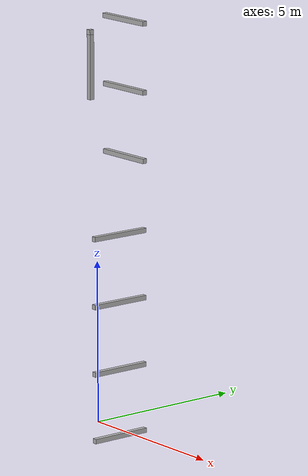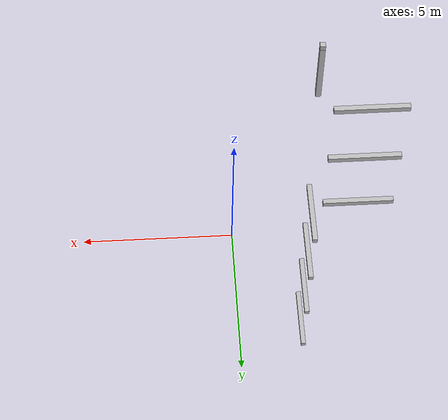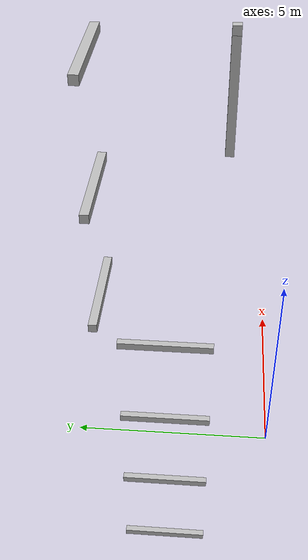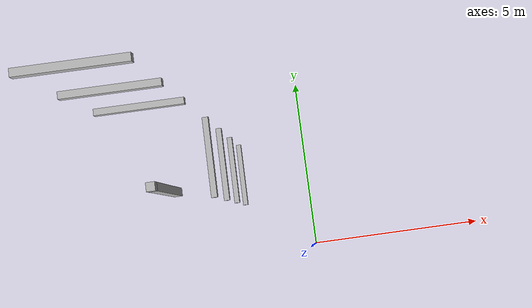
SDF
<sdf version="1.7">
 <world name="default">
  <model name="orthogonal_747_2.000.15_TS">
   <static>1</static>
   <link name="y_link_0_3_2">
    <inertial>
     <mass>1</mass>
     <inertia>
      <ixx>0.166667</ixx>
      <ixy>0</ixy>
      <ixz>0</ixz>
      <iyy>0.166667</iyy>
      <iyz>0</iyz>
      <izz>0.166667</izz>
     </inertia>
    </inertial>
    <pose>4.3 7.525 1.075 0 -0 0</pose>
    <visual name="visual_0">
     <laser_retro>533</laser_retro>
     <geometry><box><size>0.15 1e-06 0.15</size></box></geometry>
     <material>
      <script><name>Gazebo/Grey</name><uri>file://media/materials/scripts/gazebo.material</uri></script>
      <shader type="pixel"><normal_map>__default__</normal_map></shader>
      <ambient>0.678 0.498 0.659 1</ambient>
      <diffuse>0.7 0.7 0.7 1</diffuse>
      <specular>0.01 0.01 0.01 1</specular>
      <emissive>0 0 0 1</emissive>
     </material>
     <pose>0 -1 0 0 -0 0</pose>
     <transparency>1</transparency>
    </visual>
    <visual name="visual_1">
     <laser_retro>534</laser_retro>
     <geometry><box><size>0.15 1e-06 0.15</size></box></geometry>
     <material>
      <script><name>Gazebo/Grey</name><uri>file://media/materials/scripts/gazebo.material</uri></script>
      <shader type="pixel"><normal_map>__default__</normal_map></shader>
      <ambient>0.447 0.624 0.812 1</ambient>
      <diffuse>0.7 0.7 0.7 1</diffuse>
      <specular>0.01 0.01 0.01 1</specular>
      <emissive>0 0 0 1</emissive>
     </material>
     <pose>0 1 0 0 -0 0</pose>
     <transparency>1</transparency>
    </visual>
    <visual name="visual_2">
     <laser_retro>535</laser_retro>
     <geometry><box><size>0.15 2 1e-06</size></box></geometry>
     <material>
      <script><name>Gazebo/Grey</name><uri>file://media/materials/scripts/gazebo.material</uri></script>
      <shader type="pixel"><normal_map>__default__</normal_map></shader>
      <ambient>0.988 0.686 0.243 1</ambient>
      <diffuse>0.7 0.7 0.7 1</diffuse>
      <specular>0.01 0.01 0.01 1</specular>
      <emissive>0 0 0 1</emissive>
     </material>
     <pose>0 0 -0.075 0 -0 0</pose>
     <transparency>1</transparency>
    </visual>
    <visual name="visual_3">
     <laser_retro>536</laser_retro>
     <geometry><box><size>1e-06 2 0.15</size></box></geometry>
     <material>
      <script><name>Gazebo/Grey</name><uri>file://media/materials/scripts/gazebo.material</uri></script>
      <shader type="pixel"><normal_map>__default__</normal_map></shader>
      <ambient>0.988 0.914 0.31 1</ambient>
      <diffuse>0.7 0.7 0.7 1</diffuse>
      <specular>0.01 0.01 0.01 1</specular>
      <emissive>0 0 0 1</emissive>
     </material>
     <pose>0.075 0 0 0 -0 0</pose>
     <transparency>1</transparency>
    </visual>
    <visual name="visual_4">
     <laser_retro>537</laser_retro>
     <geometry><box><size>0.15 2 1e-06</size></box></geometry>
     <material>
      <script><name>Gazebo/Grey</name><uri>file://media/materials/scripts/gazebo.material</uri></script>
      <shader type="pixel"><normal_map>__default__</normal_map></shader>
      <ambient>0.937 0.161 0.161 1</ambient>
      <diffuse>0.7 0.7 0.7 1</diffuse>
      <specular>0.01 0.01 0.01 1</specular>
      <emissive>0 0 0 1</emissive>
     </material>
     <pose>0 0 0.075 0 -0 0</pose>
     <transparency>1</transparency>
    </visual>
    <visual name="visual_5">
     <laser_retro>538</laser_retro>
     <geometry><box><size>1e-06 2 0.15</size></box></geometry>
     <material>
      <script><name>Gazebo/Grey</name><uri>file://media/materials/scripts/gazebo.material</uri></script>
      <shader type="pixel"><normal_map>__default__</normal_map></shader>
      <ambient>0.541 0.886 0.204 1</ambient>
      <diffuse>0.7 0.7 0.7 1</diffuse>
      <specular>0.01 0.01 0.01 1</specular>
      <emissive>0 0 0 1</emissive>
     </material>
     <pose>-0.075 0 0 0 -0 0</pose>
     <transparency>1</transparency>
    </visual>
    <visual name="visual_texture">
     <geometry><box><size>0.149985 1.9998 0.149985</size></box></geometry>
     <material>
      <script>
       <uri>model://BASE_MODELS/simple_block_v2_textured/materials/scripts</uri>
       <uri>model://BASE_MODELS/simple_block_v2_textured/materials/textures</uri>
       <name>metal</name>
      </script>
     </material>
     <laser_retro>539</laser_retro>
    </visual>
    <collision name="collision">
     <geometry><box><size>0.15 2 0.15</size></box></geometry>
     <surface>
      <friction>
       <ode><mu>1</mu><mu2>1</mu2><fdir1>0 0 0</fdir1><slip1>0</slip1><slip2>0</slip2></ode>
       <torsional>
        <coefficient>1</coefficient>
        <patch_radius>0</patch_radius>
        <surface_radius>0</surface_radius>
        <use_patch_radius>1</use_patch_radius>
        <ode><slip>0</slip></ode>
       </torsional>
      </friction>
      <bounce><restitution_coefficient>0</restitution_coefficient><threshold>1e+06</threshold></bounce>
      <contact>
       <collide_without_contact>0</collide_without_contact>
       <collide_without_contact_bitmask>1</collide_without_contact_bitmask>
       <collide_bitmask>1</collide_bitmask>
       <ode>
        <soft_cfm>0</soft_cfm>
        <soft_erp>0.2</soft_erp>
        <kp>1e+13</kp>
        <kd>1</kd>
        <max_vel>0.01</max_vel>
        <min_depth>0</min_depth>
       </ode>
       <bullet>
        <split_impulse>1</split_impulse>
        <split_impulse_penetration_threshold>-0.01</split_impulse_penetration_threshold>
        <soft_cfm>0</soft_cfm>
        <soft_erp>0.2</soft_erp>
        <kp>1e+13</kp>
        <kd>1</kd>
       </bullet>
      </contact>
     </surface>
    </collision>
   </link>
   <link name="y_link_1_3_2">
    <inertial>
     <mass>1</mass>
     <inertia>
      <ixx>0.166667</ixx>
      <ixy>0</ixy>
      <ixz>0</ixz>
      <iyy>0.166667</iyy>
      <iyz>0</iyz>
      <izz>0.166667</izz>
     </inertia>
    </inertial>
    <pose>4.3 7.525 3.225 0 -0 0</pose>
    <visual name="visual_0">
     <laser_retro>1373</laser_retro>
     <geometry><box><size>0.15 1e-06 0.15</size></box></geometry>
     <material>
      <script><name>Gazebo/Grey</name><uri>file://media/materials/scripts/gazebo.material</uri></script>
      <shader type="pixel"><normal_map>__default__</normal_map></shader>
      <ambient>0.678 0.498 0.659 1</ambient>
      <diffuse>0.7 0.7 0.7 1</diffuse>
      <specular>0.01 0.01 0.01 1</specular>
      <emissive>0 0 0 1</emissive>
     </material>
     <pose>0 -1 0 0 -0 0</pose>
     <transparency>1</transparency>
    </visual>
    <visual name="visual_1">
     <laser_retro>1374</laser_retro>
     <geometry><box><size>0.15 1e-06 0.15</size></box></geometry>
     <material>
      <script><name>Gazebo/Grey</name><uri>file://media/materials/scripts/gazebo.material</uri></script>
      <shader type="pixel"><normal_map>__default__</normal_map></shader>
      <ambient>0.447 0.624 0.812 1</ambient>
      <diffuse>0.7 0.7 0.7 1</diffuse>
      <specular>0.01 0.01 0.01 1</specular>
      <emissive>0 0 0 1</emissive>
     </material>
     <pose>0 1 0 0 -0 0</pose>
     <transparency>1</transparency>
    </visual>
    <visual name="visual_2">
     <laser_retro>1375</laser_retro>
     <geometry><box><size>0.15 2 1e-06</size></box></geometry>
     <material>
      <script><name>Gazebo/Grey</name><uri>file://media/materials/scripts/gazebo.material</uri></script>
      <shader type="pixel"><normal_map>__default__</normal_map></shader>
      <ambient>0.988 0.686 0.243 1</ambient>
      <diffuse>0.7 0.7 0.7 1</diffuse>
      <specular>0.01 0.01 0.01 1</specular>
      <emissive>0 0 0 1</emissive>
     </material>
     <pose>0 0 -0.075 0 -0 0</pose>
     <transparency>1</transparency>
    </visual>
    <visual name="visual_3">
     <laser_retro>1376</laser_retro>
     <geometry><box><size>1e-06 2 0.15</size></box></geometry>
     <material>
      <script><name>Gazebo/Grey</name><uri>file://media/materials/scripts/gazebo.material</uri></script>
      <shader type="pixel"><normal_map>__default__</normal_map></shader>
      <ambient>0.988 0.914 0.31 1</ambient>
      <diffuse>0.7 0.7 0.7 1</diffuse>
      <specular>0.01 0.01 0.01 1</specular>
      <emissive>0 0 0 1</emissive>
     </material>
     <pose>0.075 0 0 0 -0 0</pose>
     <transparency>1</transparency>
    </visual>
    <visual name="visual_4">
     <laser_retro>1377</laser_retro>
     <geometry><box><size>0.15 2 1e-06</size></box></geometry>
     <material>
      <script><name>Gazebo/Grey</name><uri>file://media/materials/scripts/gazebo.material</uri></script>
      <shader type="pixel"><normal_map>__default__</normal_map></shader>
      <ambient>0.937 0.161 0.161 1</ambient>
      <diffuse>0.7 0.7 0.7 1</diffuse>
      <specular>0.01 0.01 0.01 1</specular>
      <emissive>0 0 0 1</emissive>
     </material>
     <pose>0 0 0.075 0 -0 0</pose>
     <transparency>1</transparency>
    </visual>
    <visual name="visual_5">
     <laser_retro>1378</laser_retro>
     <geometry><box><size>1e-06 2 0.15</size></box></geometry>
     <material>
      <script><name>Gazebo/Grey</name><uri>file://media/materials/scripts/gazebo.material</uri></script>
      <shader type="pixel"><normal_map>__default__</normal_map></shader>
      <ambient>0.541 0.886 0.204 1</ambient>
      <diffuse>0.7 0.7 0.7 1</diffuse>
      <specular>0.01 0.01 0.01 1</specular>
      <emissive>0 0 0 1</emissive>
     </material>
     <pose>-0.075 0 0 0 -0 0</pose>
     <transparency>1</transparency>
    </visual>
    <visual name="visual_texture">
     <geometry><box><size>0.149985 1.9998 0.149985</size></box></geometry>
     <material>
      <script>
       <uri>model://BASE_MODELS/simple_block_v2_textured/materials/scripts</uri>
       <uri>model://BASE_MODELS/simple_block_v2_textured/materials/textures</uri>
       <name>metal</name>
      </script>
     </material>
     <laser_retro>1379</laser_retro>
    </visual>
    <collision name="collision">
     <geometry><box><size>0.15 2 0.15</size></box></geometry>
     <surface>
      <friction>
       <ode><mu>1</mu><mu2>1</mu2><fdir1>0 0 0</fdir1><slip1>0</slip1><slip2>0</slip2></ode>
       <torsional>
        <coefficient>1</coefficient>
        <patch_radius>0</patch_radius>
        <surface_radius>0</surface_radius>
        <use_patch_radius>1</use_patch_radius>
        <ode><slip>0</slip></ode>
       </torsional>
      </friction>
      <bounce><restitution_coefficient>0</restitution_coefficient><threshold>1e+06</threshold></bounce>
      <contact>
       <collide_without_contact>0</collide_without_contact>
       <collide_without_contact_bitmask>1</collide_without_contact_bitmask>
       <collide_bitmask>1</collide_bitmask>
       <ode>
        <soft_cfm>0</soft_cfm>
        <soft_erp>0.2</soft_erp>
        <kp>1e+13</kp>
        <kd>1</kd>
        <max_vel>0.01</max_vel>
        <min_depth>0</min_depth>
       </ode>
       <bullet>
        <split_impulse>1</split_impulse>
        <split_impulse_penetration_threshold>-0.01</split_impulse_penetration_threshold>
        <soft_cfm>0</soft_cfm>
        <soft_erp>0.2</soft_erp>
        <kp>1e+13</kp>
        <kd>1</kd>
       </bullet>
      </contact>
     </surface>
    </collision>
   </link>
   <link name="y_link_2_3_2">
    <inertial>
     <mass>1</mass>
     <inertia>
      <ixx>0.166667</ixx>
      <ixy>0</ixy>
      <ixz>0</ixz>
      <iyy>0.166667</iyy>
      <iyz>0</iyz>
      <izz>0.166667</izz>
     </inertia>
    </inertial>
    <pose>4.3 7.525 5.375 0 -0 0</pose>
    <visual name="visual_0">
     <laser_retro>2276</laser_retro>
     <geometry><box><size>0.15 1e-06 0.15</size></box></geometry>
     <material>
      <script><name>Gazebo/Grey</name><uri>file://media/materials/scripts/gazebo.material</uri></script>
      <shader type="pixel"><normal_map>__default__</normal_map></shader>
      <ambient>0.678 0.498 0.659 1</ambient>
      <diffuse>0.7 0.7 0.7 1</diffuse>
      <specular>0.01 0.01 0.01 1</specular>
      <emissive>0 0 0 1</emissive>
     </material>
     <pose>0 -1 0 0 -0 0</pose>
     <transparency>1</transparency>
    </visual>
    <visual name="visual_1">
     <laser_retro>2277</laser_retro>
     <geometry><box><size>0.15 1e-06 0.15</size></box></geometry>
     <material>
      <script><name>Gazebo/Grey</name><uri>file://media/materials/scripts/gazebo.material</uri></script>
      <shader type="pixel"><normal_map>__default__</normal_map></shader>
      <ambient>0.447 0.624 0.812 1</ambient>
      <diffuse>0.7 0.7 0.7 1</diffuse>
      <specular>0.01 0.01 0.01 1</specular>
      <emissive>0 0 0 1</emissive>
     </material>
     <pose>0 1 0 0 -0 0</pose>
     <transparency>1</transparency>
    </visual>
    <visual name="visual_2">
     <laser_retro>2278</laser_retro>
     <geometry><box><size>0.15 2 1e-06</size></box></geometry>
     <material>
      <script><name>Gazebo/Grey</name><uri>file://media/materials/scripts/gazebo.material</uri></script>
      <shader type="pixel"><normal_map>__default__</normal_map></shader>
      <ambient>0.988 0.686 0.243 1</ambient>
      <diffuse>0.7 0.7 0.7 1</diffuse>
      <specular>0.01 0.01 0.01 1</specular>
      <emissive>0 0 0 1</emissive>
     </material>
     <pose>0 0 -0.075 0 -0 0</pose>
     <transparency>1</transparency>
    </visual>
    <visual name="visual_3">
     <laser_retro>2279</laser_retro>
     <geometry><box><size>1e-06 2 0.15</size></box></geometry>
     <material>
      <script><name>Gazebo/Grey</name><uri>file://media/materials/scripts/gazebo.material</uri></script>
      <shader type="pixel"><normal_map>__default__</normal_map></shader>
      <ambient>0.988 0.914 0.31 1</ambient>
      <diffuse>0.7 0.7 0.7 1</diffuse>
      <specular>0.01 0.01 0.01 1</specular>
      <emissive>0 0 0 1</emissive>
     </material>
     <pose>0.075 0 0 0 -0 0</pose>
     <transparency>1</transparency>
    </visual>
    <visual name="visual_4">
     <laser_retro>2280</laser_retro>
     <geometry><box><size>0.15 2 1e-06</size></box></geometry>
     <material>
      <script><name>Gazebo/Grey</name><uri>file://media/materials/scripts/gazebo.material</uri></script>
      <shader type="pixel"><normal_map>__default__</normal_map></shader>
      <ambient>0.937 0.161 0.161 1</ambient>
      <diffuse>0.7 0.7 0.7 1</diffuse>
      <specular>0.01 0.01 0.01 1</specular>
      <emissive>0 0 0 1</emissive>
     </material>
     <pose>0 0 0.075 0 -0 0</pose>
     <transparency>1</transparency>
    </visual>
    <visual name="visual_5">
     <laser_retro>2281</laser_retro>
     <geometry><box><size>1e-06 2 0.15</size></box></geometry>
     <material>
      <script><name>Gazebo/Grey</name><uri>file://media/materials/scripts/gazebo.material</uri></script>
      <shader type="pixel"><normal_map>__default__</normal_map></shader>
      <ambient>0.541 0.886 0.204 1</ambient>
      <diffuse>0.7 0.7 0.7 1</diffuse>
      <specular>0.01 0.01 0.01 1</specular>
      <emissive>0 0 0 1</emissive>
     </material>
     <pose>-0.075 0 0 0 -0 0</pose>
     <transparency>1</transparency>
    </visual>
    <visual name="visual_texture">
     <geometry><box><size>0.149985 1.9998 0.149985</size></box></geometry>
     <material>
      <script>
       <uri>model://BASE_MODELS/simple_block_v2_textured/materials/scripts</uri>
       <uri>model://BASE_MODELS/simple_block_v2_textured/materials/textures</uri>
       <name>metal</name>
      </script>
     </material>
     <laser_retro>2282</laser_retro>
    </visual>
    <collision name="collision">
     <geometry><box><size>0.15 2 0.15</size></box></geometry>
     <surface>
      <friction>
       <ode><mu>1</mu><mu2>1</mu2><fdir1>0 0 0</fdir1><slip1>0</slip1><slip2>0</slip2></ode>
       <torsional>
        <coefficient>1</coefficient>
        <patch_radius>0</patch_radius>
        <surface_radius>0</surface_radius>
        <use_patch_radius>1</use_patch_radius>
        <ode><slip>0</slip></ode>
       </torsional>
      </friction>
      <bounce><restitution_coefficient>0</restitution_coefficient><threshold>1e+06</threshold></bounce>
      <contact>
       <collide_without_contact>0</collide_without_contact>
       <collide_without_contact_bitmask>1</collide_without_contact_bitmask>
       <collide_bitmask>1</collide_bitmask>
       <ode>
        <soft_cfm>0</soft_cfm>
        <soft_erp>0.2</soft_erp>
        <kp>1e+13</kp>
        <kd>1</kd>
        <max_vel>0.01</max_vel>
        <min_depth>0</min_depth>
       </ode>
       <bullet>
        <split_impulse>1</split_impulse>
        <split_impulse_penetration_threshold>-0.01</split_impulse_penetration_threshold>
        <soft_cfm>0</soft_cfm>
        <soft_erp>0.2</soft_erp>
        <kp>1e+13</kp>
        <kd>1</kd>
       </bullet>
      </contact>
     </surface>
    </collision>
   </link>
   <link name="y_link_3_3_2">
    <inertial>
     <mass>1</mass>
     <inertia>
      <ixx>0.166667</ixx>
      <ixy>0</ixy>
      <ixz>0</ixz>
      <iyy>0.166667</iyy>
      <iyz>0</iyz>
      <izz>0.166667</izz>
     </inertia>
    </inertial>
    <pose>4.3 7.525 7.525 0 -0 0</pose>
    <visual name="visual_0">
     <laser_retro>3179</laser_retro>
     <geometry><box><size>0.15 1e-06 0.15</size></box></geometry>
     <material>
      <script><name>Gazebo/Grey</name><uri>file://media/materials/scripts/gazebo.material</uri></script>
      <shader type="pixel"><normal_map>__default__</normal_map></shader>
      <ambient>0.678 0.498 0.659 1</ambient>
      <diffuse>0.7 0.7 0.7 1</diffuse>
      <specular>0.01 0.01 0.01 1</specular>
      <emissive>0 0 0 1</emissive>
     </material>
     <pose>0 -1 0 0 -0 0</pose>
     <transparency>1</transparency>
    </visual>
    <visual name="visual_1">
     <laser_retro>3180</laser_retro>
     <geometry><box><size>0.15 1e-06 0.15</size></box></geometry>
     <material>
      <script><name>Gazebo/Grey</name><uri>file://media/materials/scripts/gazebo.material</uri></script>
      <shader type="pixel"><normal_map>__default__</normal_map></shader>
      <ambient>0.447 0.624 0.812 1</ambient>
      <diffuse>0.7 0.7 0.7 1</diffuse>
      <specular>0.01 0.01 0.01 1</specular>
      <emissive>0 0 0 1</emissive>
     </material>
     <pose>0 1 0 0 -0 0</pose>
     <transparency>1</transparency>
    </visual>
    <visual name="visual_2">
     <laser_retro>3181</laser_retro>
     <geometry><box><size>0.15 2 1e-06</size></box></geometry>
     <material>
      <script><name>Gazebo/Grey</name><uri>file://media/materials/scripts/gazebo.material</uri></script>
      <shader type="pixel"><normal_map>__default__</normal_map></shader>
      <ambient>0.988 0.686 0.243 1</ambient>
      <diffuse>0.7 0.7 0.7 1</diffuse>
      <specular>0.01 0.01 0.01 1</specular>
      <emissive>0 0 0 1</emissive>
     </material>
     <pose>0 0 -0.075 0 -0 0</pose>
     <transparency>1</transparency>
    </visual>
    <visual name="visual_3">
     <laser_retro>3182</laser_retro>
     <geometry><box><size>1e-06 2 0.15</size></box></geometry>
     <material>
      <script><name>Gazebo/Grey</name><uri>file://media/materials/scripts/gazebo.material</uri></script>
      <shader type="pixel"><normal_map>__default__</normal_map></shader>
      <ambient>0.988 0.914 0.31 1</ambient>
      <diffuse>0.7 0.7 0.7 1</diffuse>
      <specular>0.01 0.01 0.01 1</specular>
      <emissive>0 0 0 1</emissive>
     </material>
     <pose>0.075 0 0 0 -0 0</pose>
     <transparency>1</transparency>
    </visual>
    <visual name="visual_4">
     <laser_retro>3183</laser_retro>
     <geometry><box><size>0.15 2 1e-06</size></box></geometry>
     <material>
      <script><name>Gazebo/Grey</name><uri>file://media/materials/scripts/gazebo.material</uri></script>
      <shader type="pixel"><normal_map>__default__</normal_map></shader>
      <ambient>0.937 0.161 0.161 1</ambient>
      <diffuse>0.7 0.7 0.7 1</diffuse>
      <specular>0.01 0.01 0.01 1</specular>
      <emissive>0 0 0 1</emissive>
     </material>
     <pose>0 0 0.075 0 -0 0</pose>
     <transparency>1</transparency>
    </visual>
    <visual name="visual_5">
     <laser_retro>3184</laser_retro>
     <geometry><box><size>1e-06 2 0.15</size></box></geometry>
     <material>
      <script><name>Gazebo/Grey</name><uri>file://media/materials/scripts/gazebo.material</uri></script>
      <shader type="pixel"><normal_map>__default__</normal_map></shader>
      <ambient>0.541 0.886 0.204 1</ambient>
      <diffuse>0.7 0.7 0.7 1</diffuse>
      <specular>0.01 0.01 0.01 1</specular>
      <emissive>0 0 0 1</emissive>
     </material>
     <pose>-0.075 0 0 0 -0 0</pose>
     <transparency>1</transparency>
    </visual>
    <visual name="visual_texture">
     <geometry><box><size>0.149985 1.9998 0.149985</size></box></geometry>
     <material>
      <script>
       <uri>model://BASE_MODELS/simple_block_v2_textured/materials/scripts</uri>
       <uri>model://BASE_MODELS/simple_block_v2_textured/materials/textures</uri>
       <name>metal</name>
      </script>
     </material>
     <laser_retro>3185</laser_retro>
    </visual>
    <collision name="collision">
     <geometry><box><size>0.15 2 0.15</size></box></geometry>
     <surface>
      <friction>
       <ode><mu>1</mu><mu2>1</mu2><fdir1>0 0 0</fdir1><slip1>0</slip1><slip2>0</slip2></ode>
       <torsional>
        <coefficient>1</coefficient>
        <patch_radius>0</patch_radius>
        <surface_radius>0</surface_radius>
        <use_patch_radius>1</use_patch_radius>
        <ode><slip>0</slip></ode>
       </torsional>
      </friction>
      <bounce><restitution_coefficient>0</restitution_coefficient><threshold>1e+06</threshold></bounce>
      <contact>
       <collide_without_contact>0</collide_without_contact>
       <collide_without_contact_bitmask>1</collide_without_contact_bitmask>
       <collide_bitmask>1</collide_bitmask>
       <ode>
        <soft_cfm>0</soft_cfm>
        <soft_erp>0.2</soft_erp>
        <kp>1e+13</kp>
        <kd>1</kd>
        <max_vel>0.01</max_vel>
        <min_depth>0</min_depth>
       </ode>
       <bullet>
        <split_impulse>1</split_impulse>
        <split_impulse_penetration_threshold>-0.01</split_impulse_penetration_threshold>
        <soft_cfm>0</soft_cfm>
        <soft_erp>0.2</soft_erp>
        <kp>1e+13</kp>
        <kd>1</kd>
       </bullet>
      </contact>
     </surface>
    </collision>
   </link>
   <link name="x_link_4_4_1">
    <inertial>
     <mass>1</mass>
     <inertia>
      <ixx>0.166667</ixx>
      <ixy>0</ixy>
      <ixz>0</ixz>
      <iyy>0.166667</iyy>
      <iyz>0</iyz>
      <izz>0.166667</izz>
     </inertia>
    </inertial>
    <pose>3.225 8.6 9.675 0 -0 0</pose>
    <visual name="visual_0">
     <laser_retro>4222</laser_retro>
     <geometry><box><size>2 1e-06 0.15</size></box></geometry>
     <material>
      <script><name>Gazebo/Grey</name><uri>file://media/materials/scripts/gazebo.material</uri></script>
      <shader type="pixel"><normal_map>__default__</normal_map></shader>
      <ambient>0.678 0.498 0.659 1</ambient>
      <diffuse>0.7 0.7 0.7 1</diffuse>
      <specular>0.01 0.01 0.01 1</specular>
      <emissive>0 0 0 1</emissive>
     </material>
     <pose>0 -0.075 0 0 -0 0</pose>
     <transparency>1</transparency>
    </visual>
    <visual name="visual_1">
     <laser_retro>4223</laser_retro>
     <geometry><box><size>2 1e-06 0.15</size></box></geometry>
     <material>
      <script><name>Gazebo/Grey</name><uri>file://media/materials/scripts/gazebo.material</uri></script>
      <shader type="pixel"><normal_map>__default__</normal_map></shader>
      <ambient>0.447 0.624 0.812 1</ambient>
      <diffuse>0.7 0.7 0.7 1</diffuse>
      <specular>0.01 0.01 0.01 1</specular>
      <emissive>0 0 0 1</emissive>
     </material>
     <pose>0 0.075 0 0 -0 0</pose>
     <transparency>1</transparency>
    </visual>
    <visual name="visual_2">
     <laser_retro>4224</laser_retro>
     <geometry><box><size>2 0.15 1e-06</size></box></geometry>
     <material>
      <script><name>Gazebo/Grey</name><uri>file://media/materials/scripts/gazebo.material</uri></script>
      <shader type="pixel"><normal_map>__default__</normal_map></shader>
      <ambient>0.988 0.686 0.243 1</ambient>
      <diffuse>0.7 0.7 0.7 1</diffuse>
      <specular>0.01 0.01 0.01 1</specular>
      <emissive>0 0 0 1</emissive>
     </material>
     <pose>0 0 -0.075 0 -0 0</pose>
     <transparency>1</transparency>
    </visual>
    <visual name="visual_3">
     <laser_retro>4225</laser_retro>
     <geometry><box><size>1e-06 0.15 0.15</size></box></geometry>
     <material>
      <script><name>Gazebo/Grey</name><uri>file://media/materials/scripts/gazebo.material</uri></script>
      <shader type="pixel"><normal_map>__default__</normal_map></shader>
      <ambient>0.988 0.914 0.31 1</ambient>
      <diffuse>0.7 0.7 0.7 1</diffuse>
      <specular>0.01 0.01 0.01 1</specular>
      <emissive>0 0 0 1</emissive>
     </material>
     <pose>1 0 0 0 -0 0</pose>
     <transparency>1</transparency>
    </visual>
    <visual name="visual_4">
     <laser_retro>4226</laser_retro>
     <geometry><box><size>2 0.15 1e-06</size></box></geometry>
     <material>
      <script><name>Gazebo/Grey</name><uri>file://media/materials/scripts/gazebo.material</uri></script>
      <shader type="pixel"><normal_map>__default__</normal_map></shader>
      <ambient>0.937 0.161 0.161 1</ambient>
      <diffuse>0.7 0.7 0.7 1</diffuse>
      <specular>0.01 0.01 0.01 1</specular>
      <emissive>0 0 0 1</emissive>
     </material>
     <pose>0 0 0.075 0 -0 0</pose>
     <transparency>1</transparency>
    </visual>
    <visual name="visual_5">
     <laser_retro>4227</laser_retro>
     <geometry><box><size>1e-06 0.15 0.15</size></box></geometry>
     <material>
      <script><name>Gazebo/Grey</name><uri>file://media/materials/scripts/gazebo.material</uri></script>
      <shader type="pixel"><normal_map>__default__</normal_map></shader>
      <ambient>0.541 0.886 0.204 1</ambient>
      <diffuse>0.7 0.7 0.7 1</diffuse>
      <specular>0.01 0.01 0.01 1</specular>
      <emissive>0 0 0 1</emissive>
     </material>
     <pose>-1 0 0 0 -0 0</pose>
     <transparency>1</transparency>
    </visual>
    <visual name="visual_texture">
     <geometry><box><size>1.9998 0.149985 0.149985</size></box></geometry>
     <material>
      <script>
       <uri>model://BASE_MODELS/simple_block_v2_textured/materials/scripts</uri>
       <uri>model://BASE_MODELS/simple_block_v2_textured/materials/textures</uri>
       <name>metal</name>
      </script>
     </material>
     <laser_retro>4228</laser_retro>
    </visual>
    <collision name="collision">
     <geometry><box><size>2 0.15 0.15</size></box></geometry>
     <surface>
      <friction>
       <ode><mu>1</mu><mu2>1</mu2><fdir1>0 0 0</fdir1><slip1>0</slip1><slip2>0</slip2></ode>
       <torsional>
        <coefficient>1</coefficient>
        <patch_radius>0</patch_radius>
        <surface_radius>0</surface_radius>
        <use_patch_radius>1</use_patch_radius>
        <ode><slip>0</slip></ode>
       </torsional>
      </friction>
      <bounce><restitution_coefficient>0</restitution_coefficient><threshold>1e+06</threshold></bounce>
      <contact>
       <collide_without_contact>0</collide_without_contact>
       <collide_without_contact_bitmask>1</collide_without_contact_bitmask>
       <collide_bitmask>1</collide_bitmask>
       <ode>
        <soft_cfm>0</soft_cfm>
        <soft_erp>0.2</soft_erp>
        <kp>1e+13</kp>
        <kd>1</kd>
        <max_vel>0.01</max_vel>
        <min_depth>0</min_depth>
       </ode>
       <bullet>
        <split_impulse>1</split_impulse>
        <split_impulse_penetration_threshold>-0.01</split_impulse_penetration_threshold>
        <soft_cfm>0</soft_cfm>
        <soft_erp>0.2</soft_erp>
        <kp>1e+13</kp>
        <kd>1</kd>
       </bullet>
      </contact>
     </surface>
    </collision>
   </link>
   <link name="x_link_5_4_1">
    <inertial>
     <mass>1</mass>
     <inertia>
      <ixx>0.166667</ixx>
      <ixy>0</ixy>
      <ixz>0</ixz>
      <iyy>0.166667</iyy>
      <iyz>0</iyz>
      <izz>0.166667</izz>
     </inertia>
    </inertial>
    <pose>3.225 8.6 11.825 0 -0 0</pose>
    <visual name="visual_0">
     <laser_retro>5125</laser_retro>
     <geometry><box><size>2 1e-06 0.15</size></box></geometry>
     <material>
      <script><name>Gazebo/Grey</name><uri>file://media/materials/scripts/gazebo.material</uri></script>
      <shader type="pixel"><normal_map>__default__</normal_map></shader>
      <ambient>0.678 0.498 0.659 1</ambient>
      <diffuse>0.7 0.7 0.7 1</diffuse>
      <specular>0.01 0.01 0.01 1</specular>
      <emissive>0 0 0 1</emissive>
     </material>
     <pose>0 -0.075 0 0 -0 0</pose>
     <transparency>1</transparency>
    </visual>
    <visual name="visual_1">
     <laser_retro>5126</laser_retro>
     <geometry><box><size>2 1e-06 0.15</size></box></geometry>
     <material>
      <script><name>Gazebo/Grey</name><uri>file://media/materials/scripts/gazebo.material</uri></script>
      <shader type="pixel"><normal_map>__default__</normal_map></shader>
      <ambient>0.447 0.624 0.812 1</ambient>
      <diffuse>0.7 0.7 0.7 1</diffuse>
      <specular>0.01 0.01 0.01 1</specular>
      <emissive>0 0 0 1</emissive>
     </material>
     <pose>0 0.075 0 0 -0 0</pose>
     <transparency>1</transparency>
    </visual>
    <visual name="visual_2">
     <laser_retro>5127</laser_retro>
     <geometry><box><size>2 0.15 1e-06</size></box></geometry>
     <material>
      <script><name>Gazebo/Grey</name><uri>file://media/materials/scripts/gazebo.material</uri></script>
      <shader type="pixel"><normal_map>__default__</normal_map></shader>
      <ambient>0.988 0.686 0.243 1</ambient>
      <diffuse>0.7 0.7 0.7 1</diffuse>
      <specular>0.01 0.01 0.01 1</specular>
      <emissive>0 0 0 1</emissive>
     </material>
     <pose>0 0 -0.075 0 -0 0</pose>
     <transparency>1</transparency>
    </visual>
    <visual name="visual_3">
     <laser_retro>5128</laser_retro>
     <geometry><box><size>1e-06 0.15 0.15</size></box></geometry>
     <material>
      <script><name>Gazebo/Grey</name><uri>file://media/materials/scripts/gazebo.material</uri></script>
      <shader type="pixel"><normal_map>__default__</normal_map></shader>
      <ambient>0.988 0.914 0.31 1</ambient>
      <diffuse>0.7 0.7 0.7 1</diffuse>
      <specular>0.01 0.01 0.01 1</specular>
      <emissive>0 0 0 1</emissive>
     </material>
     <pose>1 0 0 0 -0 0</pose>
     <transparency>1</transparency>
    </visual>
    <visual name="visual_4">
     <laser_retro>5129</laser_retro>
     <geometry><box><size>2 0.15 1e-06</size></box></geometry>
     <material>
      <script><name>Gazebo/Grey</name><uri>file://media/materials/scripts/gazebo.material</uri></script>
      <shader type="pixel"><normal_map>__default__</normal_map></shader>
      <ambient>0.937 0.161 0.161 1</ambient>
      <diffuse>0.7 0.7 0.7 1</diffuse>
      <specular>0.01 0.01 0.01 1</specular>
      <emissive>0 0 0 1</emissive>
     </material>
     <pose>0 0 0.075 0 -0 0</pose>
     <transparency>1</transparency>
    </visual>
    <visual name="visual_5">
     <laser_retro>5130</laser_retro>
     <geometry><box><size>1e-06 0.15 0.15</size></box></geometry>
     <material>
      <script><name>Gazebo/Grey</name><uri>file://media/materials/scripts/gazebo.material</uri></script>
      <shader type="pixel"><normal_map>__default__</normal_map></shader>
      <ambient>0.541 0.886 0.204 1</ambient>
      <diffuse>0.7 0.7 0.7 1</diffuse>
      <specular>0.01 0.01 0.01 1</specular>
      <emissive>0 0 0 1</emissive>
     </material>
     <pose>-1 0 0 0 -0 0</pose>
     <transparency>1</transparency>
    </visual>
    <visual name="visual_texture">
     <geometry><box><size>1.9998 0.149985 0.149985</size></box></geometry>
     <material>
      <script>
       <uri>model://BASE_MODELS/simple_block_v2_textured/materials/scripts</uri>
       <uri>model://BASE_MODELS/simple_block_v2_textured/materials/textures</uri>
       <name>metal</name>
      </script>
     </material>
     <laser_retro>5131</laser_retro>
    </visual>
    <collision name="collision">
     <geometry><box><size>2 0.15 0.15</size></box></geometry>
     <surface>
      <friction>
       <ode><mu>1</mu><mu2>1</mu2><fdir1>0 0 0</fdir1><slip1>0</slip1><slip2>0</slip2></ode>
       <torsional>
        <coefficient>1</coefficient>
        <patch_radius>0</patch_radius>
        <surface_radius>0</surface_radius>
        <use_patch_radius>1</use_patch_radius>
        <ode><slip>0</slip></ode>
       </torsional>
      </friction>
      <bounce><restitution_coefficient>0</restitution_coefficient><threshold>1e+06</threshold></bounce>
      <contact>
       <collide_without_contact>0</collide_without_contact>
       <collide_without_contact_bitmask>1</collide_without_contact_bitmask>
       <collide_bitmask>1</collide_bitmask>
       <ode>
        <soft_cfm>0</soft_cfm>
        <soft_erp>0.2</soft_erp>
        <kp>1e+13</kp>
        <kd>1</kd>
        <max_vel>0.01</max_vel>
        <min_depth>0</min_depth>
       </ode>
       <bullet>
        <split_impulse>1</split_impulse>
        <split_impulse_penetration_threshold>-0.01</split_impulse_penetration_threshold>
        <soft_cfm>0</soft_cfm>
        <soft_erp>0.2</soft_erp>
        <kp>1e+13</kp>
        <kd>1</kd>
       </bullet>
      </contact>
     </surface>
    </collision>
   </link>
   <link name="u_link_6_3_2">
    <inertial>
     <mass>1</mass>
     <inertia>
      <ixx>0.166667</ixx>
      <ixy>0</ixy>
      <ixz>0</ixz>
      <iyy>0.166667</iyy>
      <iyz>0</iyz>
      <izz>0.166667</izz>
     </inertia>
    </inertial>
    <pose>4.3 6.45 13.975 0 -0 0</pose>
    <visual name="visual_0">
     <laser_retro>5986</laser_retro>
     <geometry><box><size>0.15 1e-06 0.15</size></box></geometry>
     <material>
      <script><name>Gazebo/Grey</name><uri>file://media/materials/scripts/gazebo.material</uri></script>
      <shader type="pixel"><normal_map>__default__</normal_map></shader>
      <ambient>0.678 0.498 0.659 1</ambient>
      <diffuse>0.7 0.7 0.7 1</diffuse>
      <specular>0.01 0.01 0.01 1</specular>
      <emissive>0 0 0 1</emissive>
     </material>
     <pose>0 -0.075 0 0 -0 0</pose>
     <transparency>1</transparency>
    </visual>
    <visual name="visual_1">
     <laser_retro>5987</laser_retro>
     <geometry><box><size>0.15 1e-06 0.15</size></box></geometry>
     <material>
      <script><name>Gazebo/Grey</name><uri>file://media/materials/scripts/gazebo.material</uri></script>
      <shader type="pixel"><normal_map>__default__</normal_map></shader>
      <ambient>0.447 0.624 0.812 1</ambient>
      <diffuse>0.7 0.7 0.7 1</diffuse>
      <specular>0.01 0.01 0.01 1</specular>
      <emissive>0 0 0 1</emissive>
     </material>
     <pose>0 0.075 0 0 -0 0</pose>
     <transparency>1</transparency>
    </visual>
    <visual name="visual_2">
     <laser_retro>5988</laser_retro>
     <geometry><box><size>0.15 0.15 1e-06</size></box></geometry>
     <material>
      <script><name>Gazebo/Grey</name><uri>file://media/materials/scripts/gazebo.material</uri></script>
      <shader type="pixel"><normal_map>__default__</normal_map></shader>
      <ambient>0.988 0.686 0.243 1</ambient>
      <diffuse>0.7 0.7 0.7 1</diffuse>
      <specular>0.01 0.01 0.01 1</specular>
      <emissive>0 0 0 1</emissive>
     </material>
     <pose>0 0 -0.075 0 -0 0</pose>
     <transparency>1</transparency>
    </visual>
    <visual name="visual_3">
     <laser_retro>5989</laser_retro>
     <geometry><box><size>1e-06 0.15 0.15</size></box></geometry>
     <material>
      <script><name>Gazebo/Grey</name><uri>file://media/materials/scripts/gazebo.material</uri></script>
      <shader type="pixel"><normal_map>__default__</normal_map></shader>
      <ambient>0.988 0.914 0.31 1</ambient>
      <diffuse>0.7 0.7 0.7 1</diffuse>
      <specular>0.01 0.01 0.01 1</specular>
      <emissive>0 0 0 1</emissive>
     </material>
     <pose>0.075 0 0 0 -0 0</pose>
     <transparency>1</transparency>
    </visual>
    <visual name="visual_4">
     <laser_retro>5990</laser_retro>
     <geometry><box><size>0.15 0.15 1e-06</size></box></geometry>
     <material>
      <script><name>Gazebo/Grey</name><uri>file://media/materials/scripts/gazebo.material</uri></script>
      <shader type="pixel"><normal_map>__default__</normal_map></shader>
      <ambient>0.937 0.161 0.161 1</ambient>
      <diffuse>0.7 0.7 0.7 1</diffuse>
      <specular>0.01 0.01 0.01 1</specular>
      <emissive>0 0 0 1</emissive>
     </material>
     <pose>0 0 0.075 0 -0 0</pose>
     <transparency>1</transparency>
    </visual>
    <visual name="visual_5">
     <laser_retro>5991</laser_retro>
     <geometry><box><size>1e-06 0.15 0.15</size></box></geometry>
     <material>
      <script><name>Gazebo/Grey</name><uri>file://media/materials/scripts/gazebo.material</uri></script>
      <shader type="pixel"><normal_map>__default__</normal_map></shader>
      <ambient>0.541 0.886 0.204 1</ambient>
      <diffuse>0.7 0.7 0.7 1</diffuse>
      <specular>0.01 0.01 0.01 1</specular>
      <emissive>0 0 0 1</emissive>
     </material>
     <pose>-0.075 0 0 0 -0 0</pose>
     <transparency>1</transparency>
    </visual>
    <visual name="visual_texture">
     <geometry><box><size>0.149985 0.149985 0.149985</size></box></geometry>
     <material>
      <script>
       <uri>model://BASE_MODELS/simple_block_v2_textured/materials/scripts</uri>
       <uri>model://BASE_MODELS/simple_block_v2_textured/materials/textures</uri>
       <name>metal</name>
      </script>
     </material>
     <laser_retro>5992</laser_retro>
    </visual>
    <collision name="collision">
     <geometry><box><size>0.15 0.15 0.15</size></box></geometry>
     <surface>
      <friction>
       <ode><mu>1</mu><mu2>1</mu2><fdir1>0 0 0</fdir1><slip1>0</slip1><slip2>0</slip2></ode>
       <torsional>
        <coefficient>1</coefficient>
        <patch_radius>0</patch_radius>
        <surface_radius>0</surface_radius>
        <use_patch_radius>1</use_patch_radius>
        <ode><slip>0</slip></ode>
       </torsional>
      </friction>
      <bounce><restitution_coefficient>0</restitution_coefficient><threshold>1e+06</threshold></bounce>
      <contact>
       <collide_without_contact>0</collide_without_contact>
       <collide_without_contact_bitmask>1</collide_without_contact_bitmask>
       <collide_bitmask>1</collide_bitmask>
       <ode>
        <soft_cfm>0</soft_cfm>
        <soft_erp>0.2</soft_erp>
        <kp>1e+13</kp>
        <kd>1</kd>
        <max_vel>0.01</max_vel>
        <min_depth>0</min_depth>
       </ode>
       <bullet>
        <split_impulse>1</split_impulse>
        <split_impulse_penetration_threshold>-0.01</split_impulse_penetration_threshold>
        <soft_cfm>0</soft_cfm>
        <soft_erp>0.2</soft_erp>
        <kp>1e+13</kp>
        <kd>1</kd>
       </bullet>
      </contact>
     </surface>
    </collision>
   </link>
   <link name="z_link_6_3_2">
    <inertial>
     <mass>1</mass>
     <inertia>
      <ixx>0.166667</ixx>
      <ixy>0</ixy>
      <ixz>0</ixz>
      <iyy>0.166667</iyy>
      <iyz>0</iyz>
      <izz>0.166667</izz>
     </inertia>
    </inertial>
    <pose>4.3 6.45 12.9 0 -0 0</pose>
    <visual name="visual_0">
     <laser_retro>5993</laser_retro>
     <geometry><box><size>0.15 1e-06 2</size></box></geometry>
     <material>
      <script><name>Gazebo/Grey</name><uri>file://media/materials/scripts/gazebo.material</uri></script>
      <shader type="pixel"><normal_map>__default__</normal_map></shader>
      <ambient>0.678 0.498 0.659 1</ambient>
      <diffuse>0.7 0.7 0.7 1</diffuse>
      <specular>0.01 0.01 0.01 1</specular>
      <emissive>0 0 0 1</emissive>
     </material>
     <pose>0 -0.075 0 0 -0 0</pose>
     <transparency>1</transparency>
    </visual>
    <visual name="visual_1">
     <laser_retro>5994</laser_retro>
     <geometry><box><size>0.15 1e-06 2</size></box></geometry>
     <material>
      <script><name>Gazebo/Grey</name><uri>file://media/materials/scripts/gazebo.material</uri></script>
      <shader type="pixel"><normal_map>__default__</normal_map></shader>
      <ambient>0.447 0.624 0.812 1</ambient>
      <diffuse>0.7 0.7 0.7 1</diffuse>
      <specular>0.01 0.01 0.01 1</specular>
      <emissive>0 0 0 1</emissive>
     </material>
     <pose>0 0.075 0 0 -0 0</pose>
     <transparency>1</transparency>
    </visual>
    <visual name="visual_2">
     <laser_retro>5995</laser_retro>
     <geometry><box><size>0.15 0.15 1e-06</size></box></geometry>
     <material>
      <script><name>Gazebo/Grey</name><uri>file://media/materials/scripts/gazebo.material</uri></script>
      <shader type="pixel"><normal_map>__default__</normal_map></shader>
      <ambient>0.988 0.686 0.243 1</ambient>
      <diffuse>0.7 0.7 0.7 1</diffuse>
      <specular>0.01 0.01 0.01 1</specular>
      <emissive>0 0 0 1</emissive>
     </material>
     <pose>0 0 -1 0 -0 0</pose>
     <transparency>1</transparency>
    </visual>
    <visual name="visual_3">
     <laser_retro>5996</laser_retro>
     <geometry><box><size>1e-06 0.15 2</size></box></geometry>
     <material>
      <script><name>Gazebo/Grey</name><uri>file://media/materials/scripts/gazebo.material</uri></script>
      <shader type="pixel"><normal_map>__default__</normal_map></shader>
      <ambient>0.988 0.914 0.31 1</ambient>
      <diffuse>0.7 0.7 0.7 1</diffuse>
      <specular>0.01 0.01 0.01 1</specular>
      <emissive>0 0 0 1</emissive>
     </material>
     <pose>0.075 0 0 0 -0 0</pose>
     <transparency>1</transparency>
    </visual>
    <visual name="visual_4">
     <laser_retro>5997</laser_retro>
     <geometry><box><size>0.15 0.15 1e-06</size></box></geometry>
     <material>
      <script><name>Gazebo/Grey</name><uri>file://media/materials/scripts/gazebo.material</uri></script>
      <shader type="pixel"><normal_map>__default__</normal_map></shader>
      <ambient>0.937 0.161 0.161 1</ambient>
      <diffuse>0.7 0.7 0.7 1</diffuse>
      <specular>0.01 0.01 0.01 1</specular>
      <emissive>0 0 0 1</emissive>
     </material>
     <pose>0 0 1 0 -0 0</pose>
     <transparency>1</transparency>
    </visual>
    <visual name="visual_5">
     <laser_retro>5998</laser_retro>
     <geometry><box><size>1e-06 0.15 2</size></box></geometry>
     <material>
      <script><name>Gazebo/Grey</name><uri>file://media/materials/scripts/gazebo.material</uri></script>
      <shader type="pixel"><normal_map>__default__</normal_map></shader>
      <ambient>0.541 0.886 0.204 1</ambient>
      <diffuse>0.7 0.7 0.7 1</diffuse>
      <specular>0.01 0.01 0.01 1</specular>
      <emissive>0 0 0 1</emissive>
     </material>
     <pose>-0.075 0 0 0 -0 0</pose>
     <transparency>1</transparency>
    </visual>
    <visual name="visual_texture">
     <geometry><box><size>0.149985 0.149985 1.9998</size></box></geometry>
     <material>
      <script>
       <uri>model://BASE_MODELS/simple_block_v2_textured/materials/scripts</uri>
       <uri>model://BASE_MODELS/simple_block_v2_textured/materials/textures</uri>
       <name>metal</name>
      </script>
     </material>
     <laser_retro>5999</laser_retro>
    </visual>
    <collision name="collision">
     <geometry><box><size>0.15 0.15 2</size></box></geometry>
     <surface>
      <friction>
       <ode><mu>1</mu><mu2>1</mu2><fdir1>0 0 0</fdir1><slip1>0</slip1><slip2>0</slip2></ode>
       <torsional>
        <coefficient>1</coefficient>
        <patch_radius>0</patch_radius>
        <surface_radius>0</surface_radius>
        <use_patch_radius>1</use_patch_radius>
        <ode><slip>0</slip></ode>
       </torsional>
      </friction>
      <bounce><restitution_coefficient>0</restitution_coefficient><threshold>1e+06</threshold></bounce>
      <contact>
       <collide_without_contact>0</collide_without_contact>
       <collide_without_contact_bitmask>1</collide_without_contact_bitmask>
       <collide_bitmask>1</collide_bitmask>
       <ode>
        <soft_cfm>0</soft_cfm>
        <soft_erp>0.2</soft_erp>
        <kp>1e+13</kp>
        <kd>1</kd>
        <max_vel>0.01</max_vel>
        <min_depth>0</min_depth>
       </ode>
       <bullet>
        <split_impulse>1</split_impulse>
        <split_impulse_penetration_threshold>-0.01</split_impulse_penetration_threshold>
        <soft_cfm>0</soft_cfm>
        <soft_erp>0.2</soft_erp>
        <kp>1e+13</kp>
        <kd>1</kd>
       </bullet>
      </contact>
     </surface>
    </collision>
   </link>
   <link name="x_link_6_4_1">
    <inertial>
     <mass>1</mass>
     <inertia>
      <ixx>0.166667</ixx>
      <ixy>0</ixy>
      <ixz>0</ixz>
      <iyy>0.166667</iyy>
      <iyz>0</iyz>
      <izz>0.166667</izz>
     </inertia>
    </inertial>
    <pose>3.225 8.6 13.975 0 -0 0</pose>
    <visual name="visual_0">
     <laser_retro>6154</laser_retro>
     <geometry><box><size>2 1e-06 0.15</size></box></geometry>
     <material>
      <script><name>Gazebo/Grey</name><uri>file://media/materials/scripts/gazebo.material</uri></script>
      <shader type="pixel"><normal_map>__default__</normal_map></shader>
      <ambient>0.678 0.498 0.659 1</ambient>
      <diffuse>0.7 0.7 0.7 1</diffuse>
      <specular>0.01 0.01 0.01 1</specular>
      <emissive>0 0 0 1</emissive>
     </material>
     <pose>0 -0.075 0 0 -0 0</pose>
     <transparency>1</transparency>
    </visual>
    <visual name="visual_1">
     <laser_retro>6155</laser_retro>
     <geometry><box><size>2 1e-06 0.15</size></box></geometry>
     <material>
      <script><name>Gazebo/Grey</name><uri>file://media/materials/scripts/gazebo.material</uri></script>
      <shader type="pixel"><normal_map>__default__</normal_map></shader>
      <ambient>0.447 0.624 0.812 1</ambient>
      <diffuse>0.7 0.7 0.7 1</diffuse>
      <specular>0.01 0.01 0.01 1</specular>
      <emissive>0 0 0 1</emissive>
     </material>
     <pose>0 0.075 0 0 -0 0</pose>
     <transparency>1</transparency>
    </visual>
    <visual name="visual_2">
     <laser_retro>6156</laser_retro>
     <geometry><box><size>2 0.15 1e-06</size></box></geometry>
     <material>
      <script><name>Gazebo/Grey</name><uri>file://media/materials/scripts/gazebo.material</uri></script>
      <shader type="pixel"><normal_map>__default__</normal_map></shader>
      <ambient>0.988 0.686 0.243 1</ambient>
      <diffuse>0.7 0.7 0.7 1</diffuse>
      <specular>0.01 0.01 0.01 1</specular>
      <emissive>0 0 0 1</emissive>
     </material>
     <pose>0 0 -0.075 0 -0 0</pose>
     <transparency>1</transparency>
    </visual>
    <visual name="visual_3">
     <laser_retro>6157</laser_retro>
     <geometry><box><size>1e-06 0.15 0.15</size></box></geometry>
     <material>
      <script><name>Gazebo/Grey</name><uri>file://media/materials/scripts/gazebo.material</uri></script>
      <shader type="pixel"><normal_map>__default__</normal_map></shader>
      <ambient>0.988 0.914 0.31 1</ambient>
      <diffuse>0.7 0.7 0.7 1</diffuse>
      <specular>0.01 0.01 0.01 1</specular>
      <emissive>0 0 0 1</emissive>
     </material>
     <pose>1 0 0 0 -0 0</pose>
     <transparency>1</transparency>
    </visual>
    <visual name="visual_4">
     <laser_retro>6158</laser_retro>
     <geometry><box><size>2 0.15 1e-06</size></box></geometry>
     <material>
      <script><name>Gazebo/Grey</name><uri>file://media/materials/scripts/gazebo.material</uri></script>
      <shader type="pixel"><normal_map>__default__</normal_map></shader>
      <ambient>0.937 0.161 0.161 1</ambient>
      <diffuse>0.7 0.7 0.7 1</diffuse>
      <specular>0.01 0.01 0.01 1</specular>
      <emissive>0 0 0 1</emissive>
     </material>
     <pose>0 0 0.075 0 -0 0</pose>
     <transparency>1</transparency>
    </visual>
    <visual name="visual_5">
     <laser_retro>6159</laser_retro>
     <geometry><box><size>1e-06 0.15 0.15</size></box></geometry>
     <material>
      <script><name>Gazebo/Grey</name><uri>file://media/materials/scripts/gazebo.material</uri></script>
      <shader type="pixel"><normal_map>__default__</normal_map></shader>
      <ambient>0.541 0.886 0.204 1</ambient>
      <diffuse>0.7 0.7 0.7 1</diffuse>
      <specular>0.01 0.01 0.01 1</specular>
      <emissive>0 0 0 1</emissive>
     </material>
     <pose>-1 0 0 0 -0 0</pose>
     <transparency>1</transparency>
    </visual>
    <visual name="visual_texture">
     <geometry><box><size>1.9998 0.149985 0.149985</size></box></geometry>
     <material>
      <script>
       <uri>model://BASE_MODELS/simple_block_v2_textured/materials/scripts</uri>
       <uri>model://BASE_MODELS/simple_block_v2_textured/materials/textures</uri>
       <name>metal</name>
      </script>
     </material>
     <laser_retro>6160</laser_retro>
    </visual>
    <collision name="collision">
     <geometry><box><size>2 0.15 0.15</size></box></geometry>
     <surface>
      <friction>
       <ode><mu>1</mu><mu2>1</mu2><fdir1>0 0 0</fdir1><slip1>0</slip1><slip2>0</slip2></ode>
       <torsional>
        <coefficient>1</coefficient>
        <patch_radius>0</patch_radius>
        <surface_radius>0</surface_radius>
        <use_patch_radius>1</use_patch_radius>
        <ode><slip>0</slip></ode>
       </torsional>
      </friction>
      <bounce><restitution_coefficient>0</restitution_coefficient><threshold>1e+06</threshold></bounce>
      <contact>
       <collide_without_contact>0</collide_without_contact>
       <collide_without_contact_bitmask>1</collide_without_contact_bitmask>
       <collide_bitmask>1</collide_bitmask>
       <ode>
        <soft_cfm>0</soft_cfm>
        <soft_erp>0.2</soft_erp>
        <kp>1e+13</kp>
        <kd>1</kd>
        <max_vel>0.01</max_vel>
        <min_depth>0</min_depth>
       </ode>
       <bullet>
        <split_impulse>1</split_impulse>
        <split_impulse_penetration_threshold>-0.01</split_impulse_penetration_threshold>
        <soft_cfm>0</soft_cfm>
        <soft_erp>0.2</soft_erp>
        <kp>1e+13</kp>
        <kd>1</kd>
       </bullet>
      </contact>
     </surface>
    </collision>
   </link>
   <pose>-6.47624 -5 -2.5 0 -0 0</pose>
  </model>
 </world>
</sdf>
